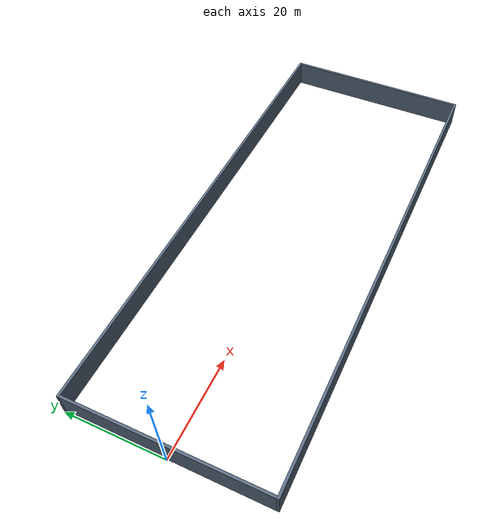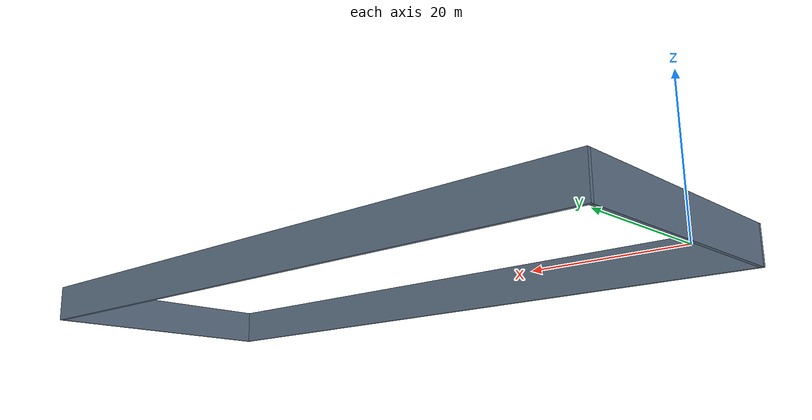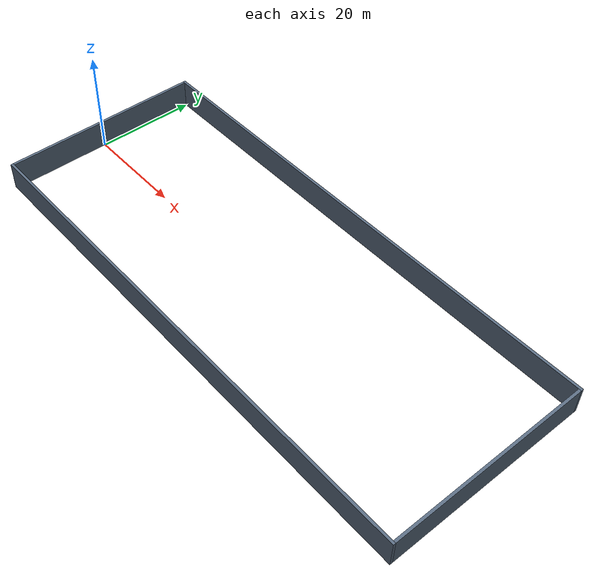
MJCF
<mujoco model="navigation-boundary">
  <worldbody>
    <body name="obstacle_0" mocap="true" pos="50 -19.75 3.25" user="0 0 0 0 0 0">
      <geom name="obstacle_geom_0" type="box" size="50 0.25 2.75" rgba="0.35 0.42 0.5 1" />
    </body>
    <body name="obstacle_1" mocap="true" pos="50 19.75 3.25" user="0 0 0 0 0 0">
      <geom name="obstacle_geom_1" type="box" size="50 0.25 2.75" rgba="0.35 0.42 0.5 1" />
    </body>
    <body name="obstacle_2" mocap="true" pos="0.25 0 3.25" user="0 0 0 0 0 0">
      <geom name="obstacle_geom_2" type="box" size="0.25 19.5 2.75" rgba="0.35 0.42 0.5 1" />
    </body>
    <body name="obstacle_3" mocap="true" pos="99.75 0 3.25" user="0 0 0 0 0 0">
      <geom name="obstacle_geom_3" type="box" size="0.25 19.5 2.75" rgba="0.35 0.42 0.5 1" />
    </body>
  </worldbody>
</mujoco>
